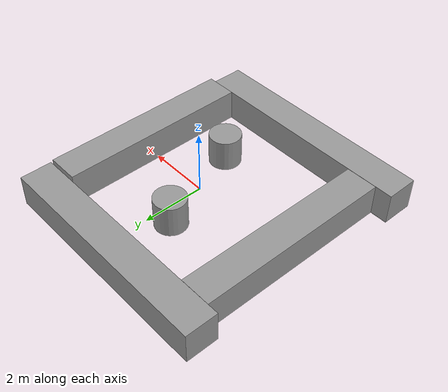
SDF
<sdf version="1.6">
 <world name="default">
  <model name="ground_plane">
   <static>1</static>
   <link name="link">
    <collision name="collision">
     <geometry><plane><normal>0 0 1</normal><size>100 100</size></plane></geometry>
     <surface>
      <contact><collide_bitmask>65535</collide_bitmask></contact>
      <friction><ode><mu>100</mu><mu2>50</mu2></ode></friction>
     </surface>
    </collision>
    <visual name="visual">
     <cast_shadows>0</cast_shadows>
     <geometry><plane><normal>0 0 1</normal><size>100 100</size></plane></geometry>
     <material>
      <script><uri>file://media/materials/scripts/gazebo.material</uri><name>Gazebo/Grey</name></script>
     </material>
    </visual>
   </link>
  </model>
  <light name="sun" type="directional">
   <pose>0 0 10 0 -0 0</pose>
   <diffuse>0.8 0.8 0.8 1</diffuse>
   <specular>0.2 0.2 0.2 1</specular>
   <attenuation>
    <range>1000</range>
    <constant>0.9</constant>
    <linear>0.01</linear>
    <quadratic>0.001</quadratic>
   </attenuation>
   <direction>-0.5 0.1 -0.9</direction>
  </light>
  <gravity>0 0 -9.8</gravity>
  <magnetic_field>6e-06 2.3e-05 -4.2e-05</magnetic_field>
  <atmosphere type="adiabatic"/>
  <physics name="default_physics" default="0" type="ode">
   <max_step_size>0.001</max_step_size>
   <real_time_factor>1</real_time_factor>
   <real_time_update_rate>1000</real_time_update_rate>
  </physics>
  <scene><ambient>0.4 0.4 0.4 1</ambient><background>0.7 0.7 0.7 1</background><shadows>1</shadows></scene>
  <audio><device>default</device></audio>
  <spherical_coordinates>
   <surface_model>EARTH_WGS84</surface_model>
   <latitude_deg>0</latitude_deg>
   <longitude_deg>0</longitude_deg>
   <elevation>0</elevation>
   <heading_deg>0</heading_deg>
  </spherical_coordinates>
  <model name="unit_box">
   <pose>-6.86641 -0.404003 -215625 -1.12797 -0.011311 0.424382</pose>
   <link name="link">
    <inertial>
     <mass>1</mass>
     <inertia>
      <ixx>0.166667</ixx>
      <ixy>0</ixy>
      <ixz>0</ixz>
      <iyy>0.166667</iyy>
      <iyz>0</iyz>
      <izz>0.166667</izz>
     </inertia>
    </inertial>
    <collision name="collision"><geometry><box><size>1 200787 1</size></box></geometry></collision>
    <visual name="visual">
     <geometry><box><size>1 200787 1</size></box></geometry>
     <material>
      <script><name>Gazebo/Grey</name><uri>file://media/materials/scripts/gazebo.material</uri></script>
     </material>
    </visual>
   </link>
  </model>
  <model name="unit_box_clone">
   <pose>2.43125 0.013657 0.494862 -0.00169 -0 -7.2e-05</pose>
   <link name="link">
    <inertial>
     <mass>1</mass>
     <inertia>
      <ixx>0.166667</ixx>
      <ixy>0</ixy>
      <ixz>0</ixz>
      <iyy>0.166667</iyy>
      <iyz>0</iyz>
      <izz>0.166667</izz>
     </inertia>
    </inertial>
    <collision name="collision"><geometry><box><size>1 6.08474 1</size></box></geometry></collision>
    <visual name="visual">
     <geometry><box><size>1 6.08474 1</size></box></geometry>
     <material>
      <script><name>Gazebo/Grey</name><uri>file://media/materials/scripts/gazebo.material</uri></script>
     </material>
    </visual>
   </link>
  </model>
  <model name="unit_box_clone_0">
   <pose>-0.730081 3.64798 0.489119 0.003013 2e-06 1.56971</pose>
   <link name="link">
    <inertial>
     <mass>1</mass>
     <inertia>
      <ixx>0.166667</ixx>
      <ixy>0</ixy>
      <ixz>0</ixz>
      <iyy>0.166667</iyy>
      <iyz>0</iyz>
      <izz>0.166667</izz>
     </inertia>
    </inertial>
    <collision name="collision"><geometry><box><size>1 7.22793 1</size></box></geometry></collision>
    <visual name="visual">
     <geometry><box><size>1 7.22793 1</size></box></geometry>
     <material>
      <script><name>Gazebo/Grey</name><uri>file://media/materials/scripts/gazebo.material</uri></script>
     </material>
    </visual>
   </link>
  </model>
  <model name="unit_box_clone_0_clone">
   <pose>-0.899015 -3.52552 0.489014 -0.003036 -2e-06 1.5699</pose>
   <link name="link">
    <inertial>
     <mass>1</mass>
     <inertia>
      <ixx>0.166667</ixx>
      <ixy>0</ixy>
      <ixz>0</ixz>
      <iyy>0.166667</iyy>
      <iyz>0</iyz>
      <izz>0.166667</izz>
     </inertia>
    </inertial>
    <collision name="collision"><geometry><box><size>1 7.2437 1</size></box></geometry></collision>
    <visual name="visual">
     <geometry><box><size>1 7.2437 1</size></box></geometry>
     <material>
      <script><name>Gazebo/Grey</name><uri>file://media/materials/scripts/gazebo.material</uri></script>
     </material>
    </visual>
   </link>
  </model>
  <model name="unit_cylinder">
   <pose>0.506075 -1.45776 0.499996 3e-06 1e-06 0.007486</pose>
   <link name="link">
    <inertial>
     <mass>1</mass>
     <inertia><ixx>0.145833</ixx><ixy>0</ixy><ixz>0</ixz><iyy>0.145833</iyy><iyz>0</iyz><izz>0.125</izz></inertia>
    </inertial>
    <collision name="collision">
     <geometry><cylinder><radius>0.5</radius><length>1</length></cylinder></geometry>
    </collision>
    <visual name="visual">
     <geometry><cylinder><radius>0.5</radius><length>1</length></cylinder></geometry>
     <material>
      <script><name>Gazebo/Grey</name><uri>file://media/materials/scripts/gazebo.material</uri></script>
     </material>
    </visual>
   </link>
  </model>
  <model name="unit_cylinder_0">
   <pose>-0.537231 1.52651 0.499997 0 -0 0</pose>
   <link name="link">
    <inertial>
     <mass>1</mass>
     <inertia><ixx>0.145833</ixx><ixy>0</ixy><ixz>0</ixz><iyy>0.145833</iyy><iyz>0</iyz><izz>0.125</izz></inertia>
    </inertial>
    <collision name="collision">
     <geometry><cylinder><radius>0.5</radius><length>1</length></cylinder></geometry>
    </collision>
    <visual name="visual">
     <geometry><cylinder><radius>0.5</radius><length>1</length></cylinder></geometry>
     <material>
      <script><name>Gazebo/Grey</name><uri>file://media/materials/scripts/gazebo.material</uri></script>
     </material>
    </visual>
   </link>
  </model>
  <model name="unit_box_0">
   <pose>-3.48778 0.072095 0.494578 0.001762 -0 -0.000486</pose>
   <link name="link">
    <inertial>
     <mass>1</mass>
     <inertia>
      <ixx>0.166667</ixx>
      <ixy>0</ixy>
      <ixz>0</ixz>
      <iyy>0.166667</iyy>
      <iyz>0</iyz>
      <izz>0.166667</izz>
     </inertia>
    </inertial>
    <collision name="collision"><geometry><box><size>1 6.15843 1</size></box></geometry></collision>
    <visual name="visual">
     <geometry><box><size>1 6.15843 1</size></box></geometry>
     <material>
      <script><name>Gazebo/Grey</name><uri>file://media/materials/scripts/gazebo.material</uri></script>
     </material>
    </visual>
   </link>
  </model>
 </world>
</sdf>
